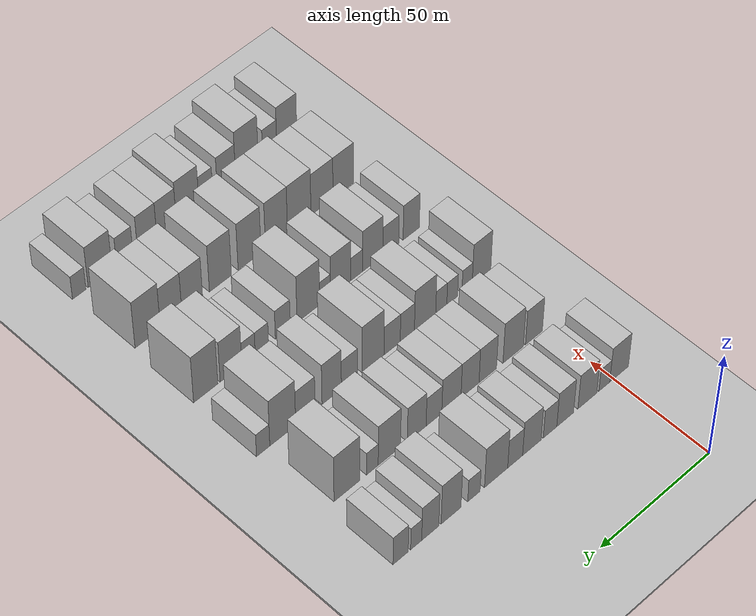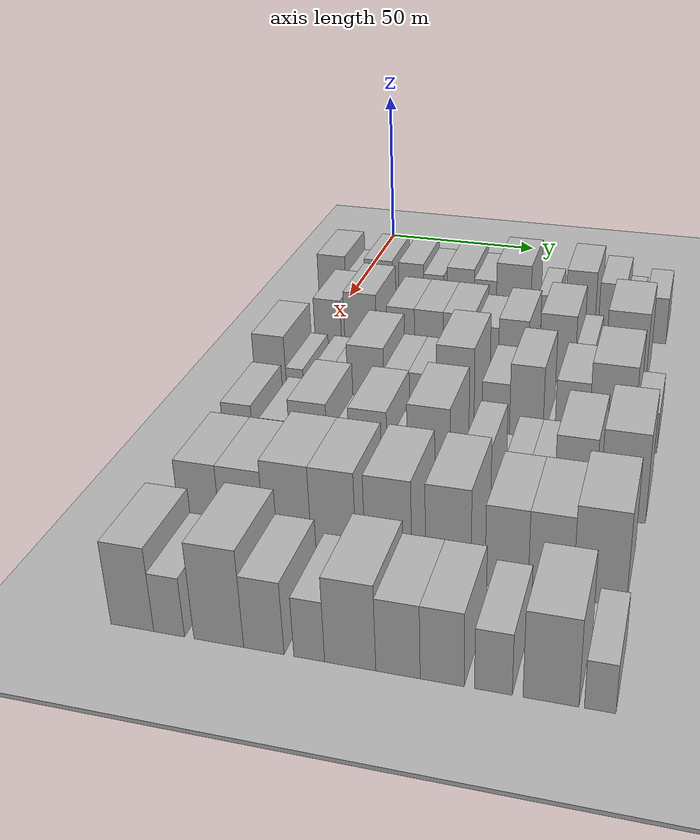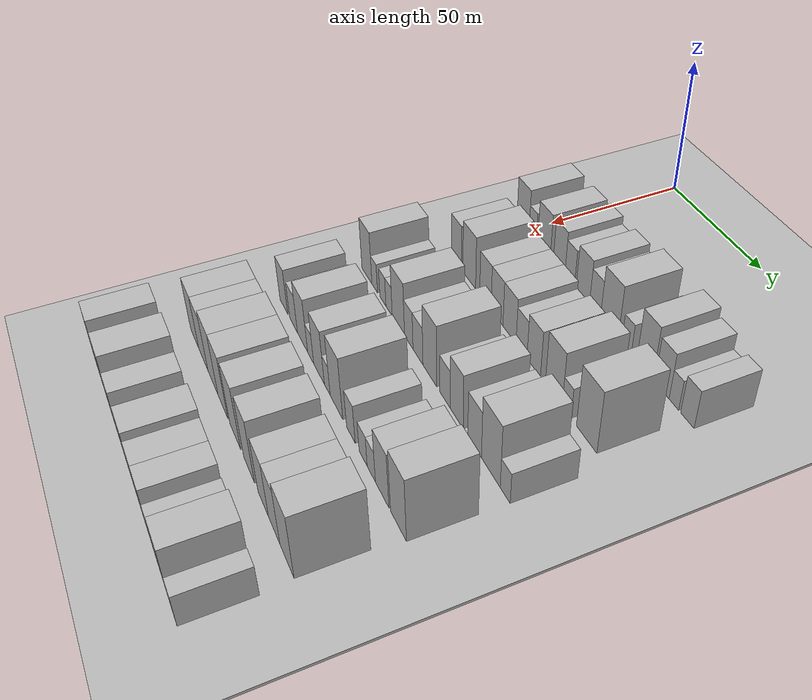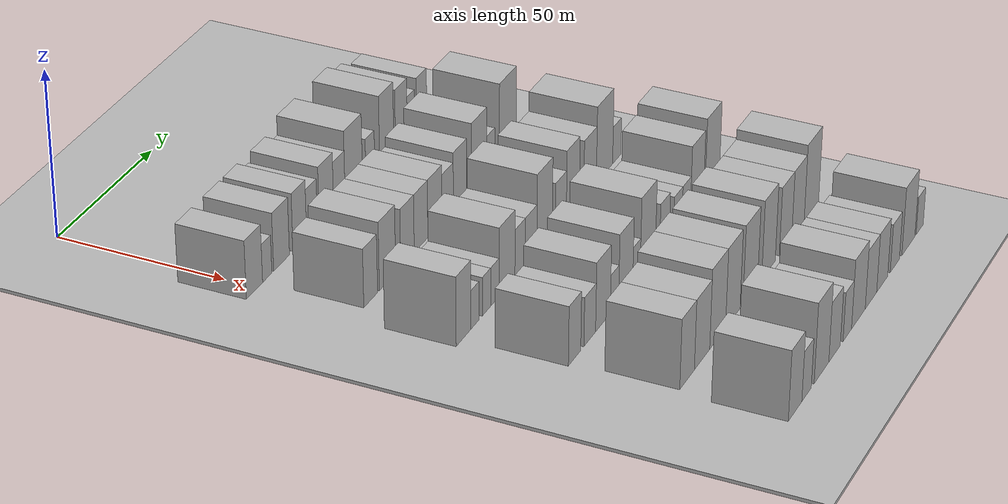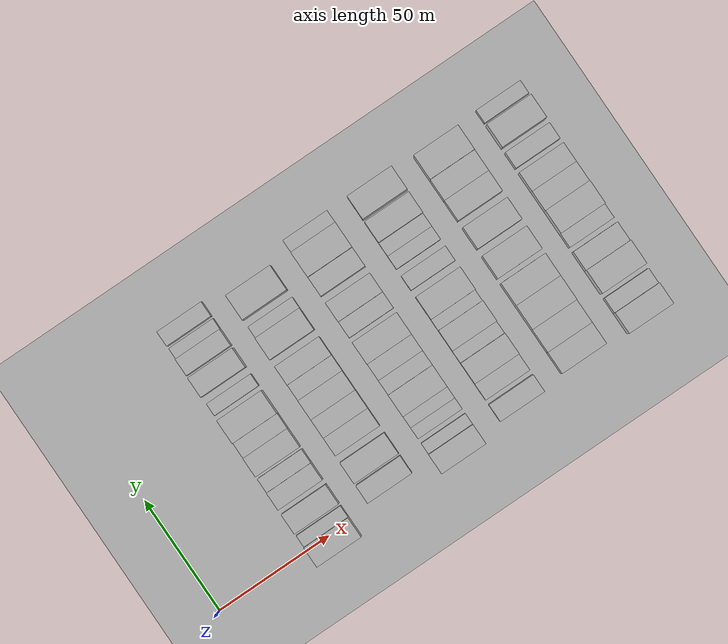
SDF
<sdf version="1.6">
 <world name="default">
  <include><name>ground_plane_1</name><uri>model://HANNAS_ground_plane</uri></include>
  <include>
   <name>ground_plane_2</name>
   <uri>model://HANNAS_ground_plane</uri>
   <pose>100 0 0  0 0 0</pose>
  </include>
  <model name="building_57">
   <static>1</static>
   <pose>50.0000 -2.3324 0 0.000000 0.000000 0.000000</pose>
   <link name="link">
    <pose>0 0 9.00 0 0 0</pose>
    <collision name="collision"><geometry><box><size>20.0000 8.7923 18.0000</size></box></geometry></collision>
    <visual name="visual">
     <cast_shadows>0</cast_shadows>
     <geometry><box><size>20.0000 8.7923 18.0000</size></box></geometry>
     <material>
      <script>
       <uri>model://HANNAS_wall/materials/scripts</uri>
       <uri>model://HANNAS_wall/materials/textures</uri>
       <name>vrc/HANNAS_wall</name>
      </script>
     </material>
    </visual>
   </link>
  </model>
  <model name="building_58">
   <static>1</static>
   <pose>50.0000 4.6097 0 0.000000 0.000000 0.000000</pose>
   <link name="link">
    <pose>0 0 6.00 0 0 0</pose>
    <collision name="collision"><geometry><box><size>20.0000 5.0919 12.0000</size></box></geometry></collision>
    <visual name="visual">
     <cast_shadows>0</cast_shadows>
     <geometry><box><size>20.0000 5.0919 12.0000</size></box></geometry>
     <material>
      <script>
       <uri>model://HANNAS_wall/materials/scripts</uri>
       <uri>model://HANNAS_wall/materials/textures</uri>
       <name>vrc/HANNAS_wall</name>
      </script>
     </material>
    </visual>
   </link>
  </model>
  <model name="building_59">
   <static>1</static>
   <pose>50.0000 12.5494 0 0.000000 0.000000 0.000000</pose>
   <link name="link">
    <pose>0 0 9.00 0 0 0</pose>
    <collision name="collision"><geometry><box><size>20.0000 8.7876 18.0000</size></box></geometry></collision>
    <visual name="visual">
     <cast_shadows>0</cast_shadows>
     <geometry><box><size>20.0000 8.7876 18.0000</size></box></geometry>
     <material>
      <script>
       <uri>model://HANNAS_wall/materials/scripts</uri>
       <uri>model://HANNAS_wall/materials/textures</uri>
       <name>vrc/HANNAS_wall</name>
      </script>
     </material>
    </visual>
   </link>
  </model>
  <model name="building_60">
   <static>1</static>
   <pose>50.0000 22.8094 0 0.000000 0.000000 0.000000</pose>
   <link name="link">
    <pose>0 0 9.00 0 0 0</pose>
    <collision name="collision"><geometry><box><size>20.0000 7.7324 18.0000</size></box></geometry></collision>
    <visual name="visual">
     <cast_shadows>0</cast_shadows>
     <geometry><box><size>20.0000 7.7324 18.0000</size></box></geometry>
     <material>
      <script>
       <uri>model://HANNAS_wall/materials/scripts</uri>
       <uri>model://HANNAS_wall/materials/textures</uri>
       <name>vrc/HANNAS_wall</name>
      </script>
     </material>
    </visual>
   </link>
  </model>
  <model name="building_61">
   <static>1</static>
   <pose>50.0000 29.7895 0 0.000000 0.000000 0.000000</pose>
   <link name="link">
    <pose>0 0 7.50 0 0 0</pose>
    <collision name="collision"><geometry><box><size>20.0000 6.2279 15.0000</size></box></geometry></collision>
    <visual name="visual">
     <cast_shadows>0</cast_shadows>
     <geometry><box><size>20.0000 6.2279 15.0000</size></box></geometry>
     <material>
      <script>
       <uri>model://HANNAS_wall/materials/scripts</uri>
       <uri>model://HANNAS_wall/materials/textures</uri>
       <name>vrc/HANNAS_wall</name>
      </script>
     </material>
    </visual>
   </link>
  </model>
  <model name="building_62">
   <static>1</static>
   <pose>50.0000 38.0964 0 0.000000 0.000000 0.000000</pose>
   <link name="link">
    <pose>0 0 9.00 0 0 0</pose>
    <collision name="collision"><geometry><box><size>20.0000 8.3859 18.0000</size></box></geometry></collision>
    <visual name="visual">
     <cast_shadows>0</cast_shadows>
     <geometry><box><size>20.0000 8.3859 18.0000</size></box></geometry>
     <material>
      <script>
       <uri>model://HANNAS_wall/materials/scripts</uri>
       <uri>model://HANNAS_wall/materials/textures</uri>
       <name>vrc/HANNAS_wall</name>
      </script>
     </material>
    </visual>
   </link>
  </model>
  <model name="building_63">
   <static>1</static>
   <pose>50.0000 45.6493 0 0.000000 0.000000 0.000000</pose>
   <link name="link">
    <pose>0 0 7.50 0 0 0</pose>
    <collision name="collision"><geometry><box><size>20.0000 6.7198 15.0000</size></box></geometry></collision>
    <visual name="visual">
     <cast_shadows>0</cast_shadows>
     <geometry><box><size>20.0000 6.7198 15.0000</size></box></geometry>
     <material>
      <script>
       <uri>model://HANNAS_wall/materials/scripts</uri>
       <uri>model://HANNAS_wall/materials/textures</uri>
       <name>vrc/HANNAS_wall</name>
      </script>
     </material>
    </visual>
   </link>
  </model>
  <model name="building_64">
   <static>1</static>
   <pose>50.0000 54.2087 0 0.000000 0.000000 0.000000</pose>
   <link name="link">
    <pose>0 0 10.50 0 0 0</pose>
    <collision name="collision"><geometry><box><size>20.0000 10.3990 21.0000</size></box></geometry></collision>
    <visual name="visual">
     <cast_shadows>0</cast_shadows>
     <geometry><box><size>20.0000 10.3990 21.0000</size></box></geometry>
     <material>
      <script>
       <uri>model://HANNAS_wall/materials/scripts</uri>
       <uri>model://HANNAS_wall/materials/textures</uri>
       <name>vrc/HANNAS_wall</name>
      </script>
     </material>
    </visual>
   </link>
  </model>
  <model name="building_65">
   <static>1</static>
   <pose>50.0000 64.1168 0 0.000000 0.000000 0.000000</pose>
   <link name="link">
    <pose>0 0 6.00 0 0 0</pose>
    <collision name="collision"><geometry><box><size>20.0000 5.4173 12.0000</size></box></geometry></collision>
    <visual name="visual">
     <cast_shadows>0</cast_shadows>
     <geometry><box><size>20.0000 5.4173 12.0000</size></box></geometry>
     <material>
      <script>
       <uri>model://HANNAS_wall/materials/scripts</uri>
       <uri>model://HANNAS_wall/materials/textures</uri>
       <name>vrc/HANNAS_wall</name>
      </script>
     </material>
    </visual>
   </link>
  </model>
  <model name="building_66">
   <static>1</static>
   <pose>50.0000 74.2066 0 0.000000 0.000000 0.000000</pose>
   <link name="link">
    <pose>0 0 10.50 0 0 0</pose>
    <collision name="collision"><geometry><box><size>20.0000 8.7624 21.0000</size></box></geometry></collision>
    <visual name="visual">
     <cast_shadows>0</cast_shadows>
     <geometry><box><size>20.0000 8.7624 21.0000</size></box></geometry>
     <material>
      <script>
       <uri>model://HANNAS_wall/materials/scripts</uri>
       <uri>model://HANNAS_wall/materials/textures</uri>
       <name>vrc/HANNAS_wall</name>
      </script>
     </material>
    </visual>
   </link>
  </model>
  <model name="building_67">
   <static>1</static>
   <pose>50.0000 83.3027 0 0.000000 0.000000 0.000000</pose>
   <link name="link">
    <pose>0 0 9.00 0 0 0</pose>
    <collision name="collision"><geometry><box><size>20.0000 7.4297 18.0000</size></box></geometry></collision>
    <visual name="visual">
     <cast_shadows>0</cast_shadows>
     <geometry><box><size>20.0000 7.4297 18.0000</size></box></geometry>
     <material>
      <script>
       <uri>model://HANNAS_wall/materials/scripts</uri>
       <uri>model://HANNAS_wall/materials/textures</uri>
       <name>vrc/HANNAS_wall</name>
      </script>
     </material>
    </visual>
   </link>
  </model>
  <model name="building_68">
   <static>1</static>
   <pose>50.0000 89.4338 0 0.000000 0.000000 0.000000</pose>
   <link name="link">
    <pose>0 0 6.00 0 0 0</pose>
    <collision name="collision"><geometry><box><size>20.0000 4.8327 12.0000</size></box></geometry></collision>
    <visual name="visual">
     <cast_shadows>0</cast_shadows>
     <geometry><box><size>20.0000 4.8327 12.0000</size></box></geometry>
     <material>
      <script>
       <uri>model://HANNAS_wall/materials/scripts</uri>
       <uri>model://HANNAS_wall/materials/textures</uri>
       <name>vrc/HANNAS_wall</name>
      </script>
     </material>
    </visual>
   </link>
  </model>
  <model name="building_69">
   <static>1</static>
   <pose>50.0000 96.1300 0 0.000000 0.000000 0.000000</pose>
   <link name="link">
    <pose>0 0 7.50 0 0 0</pose>
    <collision name="collision"><geometry><box><size>20.0000 6.5597 15.0000</size></box></geometry></collision>
    <visual name="visual">
     <cast_shadows>0</cast_shadows>
     <geometry><box><size>20.0000 6.5597 15.0000</size></box></geometry>
     <material>
      <script>
       <uri>model://HANNAS_wall/materials/scripts</uri>
       <uri>model://HANNAS_wall/materials/textures</uri>
       <name>vrc/HANNAS_wall</name>
      </script>
     </material>
    </visual>
   </link>
  </model>
  <model name="building_176">
   <static>1</static>
   <pose>79.0000 6.2187 0 0.000000 0.000000 0.000000</pose>
   <link name="link">
    <pose>0 0 9.00 0 0 0</pose>
    <collision name="collision"><geometry><box><size>20.0000 7.8987 18.0000</size></box></geometry></collision>
    <visual name="visual">
     <cast_shadows>0</cast_shadows>
     <geometry><box><size>20.0000 7.8987 18.0000</size></box></geometry>
     <material>
      <script>
       <uri>model://HANNAS_wall/materials/scripts</uri>
       <uri>model://HANNAS_wall/materials/textures</uri>
       <name>vrc/HANNAS_wall</name>
      </script>
     </material>
    </visual>
   </link>
  </model>
  <model name="building_177">
   <static>1</static>
   <pose>79.0000 15.8964 0 0.000000 0.000000 0.000000</pose>
   <link name="link">
    <pose>0 0 10.50 0 0 0</pose>
    <collision name="collision"><geometry><box><size>20.0000 9.4567 21.0000</size></box></geometry></collision>
    <visual name="visual">
     <cast_shadows>0</cast_shadows>
     <geometry><box><size>20.0000 9.4567 21.0000</size></box></geometry>
     <material>
      <script>
       <uri>model://HANNAS_wall/materials/scripts</uri>
       <uri>model://HANNAS_wall/materials/textures</uri>
       <name>vrc/HANNAS_wall</name>
      </script>
     </material>
    </visual>
   </link>
  </model>
  <model name="building_178">
   <static>1</static>
   <pose>79.0000 27.6338 0 0.000000 0.000000 0.000000</pose>
   <link name="link">
    <pose>0 0 9.00 0 0 0</pose>
    <collision name="collision"><geometry><box><size>20.0000 8.0180 18.0000</size></box></geometry></collision>
    <visual name="visual">
     <cast_shadows>0</cast_shadows>
     <geometry><box><size>20.0000 8.0180 18.0000</size></box></geometry>
     <material>
      <script>
       <uri>model://HANNAS_wall/materials/scripts</uri>
       <uri>model://HANNAS_wall/materials/textures</uri>
       <name>vrc/HANNAS_wall</name>
      </script>
     </material>
    </visual>
   </link>
  </model>
  <model name="building_179">
   <static>1</static>
   <pose>79.0000 35.7452 0 0.000000 0.000000 0.000000</pose>
   <link name="link">
    <pose>0 0 9.00 0 0 0</pose>
    <collision name="collision"><geometry><box><size>20.0000 8.2048 18.0000</size></box></geometry></collision>
    <visual name="visual">
     <cast_shadows>0</cast_shadows>
     <geometry><box><size>20.0000 8.2048 18.0000</size></box></geometry>
     <material>
      <script>
       <uri>model://HANNAS_wall/materials/scripts</uri>
       <uri>model://HANNAS_wall/materials/textures</uri>
       <name>vrc/HANNAS_wall</name>
      </script>
     </material>
    </visual>
   </link>
  </model>
  <model name="building_180">
   <static>1</static>
   <pose>79.0000 44.1849 0 0.000000 0.000000 0.000000</pose>
   <link name="link">
    <pose>0 0 9.00 0 0 0</pose>
    <collision name="collision"><geometry><box><size>20.0000 8.6746 18.0000</size></box></geometry></collision>
    <visual name="visual">
     <cast_shadows>0</cast_shadows>
     <geometry><box><size>20.0000 8.6746 18.0000</size></box></geometry>
     <material>
      <script>
       <uri>model://HANNAS_wall/materials/scripts</uri>
       <uri>model://HANNAS_wall/materials/textures</uri>
       <name>vrc/HANNAS_wall</name>
      </script>
     </material>
    </visual>
   </link>
  </model>
  <model name="building_181">
   <static>1</static>
   <pose>79.0000 52.0331 0 0.000000 0.000000 0.000000</pose>
   <link name="link">
    <pose>0 0 7.50 0 0 0</pose>
    <collision name="collision"><geometry><box><size>20.0000 7.0218 15.0000</size></box></geometry></collision>
    <visual name="visual">
     <cast_shadows>0</cast_shadows>
     <geometry><box><size>20.0000 7.0218 15.0000</size></box></geometry>
     <material>
      <script>
       <uri>model://HANNAS_wall/materials/scripts</uri>
       <uri>model://HANNAS_wall/materials/textures</uri>
       <name>vrc/HANNAS_wall</name>
      </script>
     </material>
    </visual>
   </link>
  </model>
  <model name="building_182">
   <static>1</static>
   <pose>79.0000 59.7293 0 0.000000 0.000000 0.000000</pose>
   <link name="link">
    <pose>0 0 9.00 0 0 0</pose>
    <collision name="collision"><geometry><box><size>20.0000 8.3705 18.0000</size></box></geometry></collision>
    <visual name="visual">
     <cast_shadows>0</cast_shadows>
     <geometry><box><size>20.0000 8.3705 18.0000</size></box></geometry>
     <material>
      <script>
       <uri>model://HANNAS_wall/materials/scripts</uri>
       <uri>model://HANNAS_wall/materials/textures</uri>
       <name>vrc/HANNAS_wall</name>
      </script>
     </material>
    </visual>
   </link>
  </model>
  <model name="building_183">
   <static>1</static>
   <pose>79.0000 71.8369 0 0.000000 0.000000 0.000000</pose>
   <link name="link">
    <pose>0 0 10.50 0 0 0</pose>
    <collision name="collision"><geometry><box><size>20.0000 9.8447 21.0000</size></box></geometry></collision>
    <visual name="visual">
     <cast_shadows>0</cast_shadows>
     <geometry><box><size>20.0000 9.8447 21.0000</size></box></geometry>
     <material>
      <script>
       <uri>model://HANNAS_wall/materials/scripts</uri>
       <uri>model://HANNAS_wall/materials/textures</uri>
       <name>vrc/HANNAS_wall</name>
      </script>
     </material>
    </visual>
   </link>
  </model>
  <model name="building_184">
   <static>1</static>
   <pose>79.0000 79.3097 0 0.000000 0.000000 0.000000</pose>
   <link name="link">
    <pose>0 0 6.00 0 0 0</pose>
    <collision name="collision"><geometry><box><size>20.0000 5.1010 12.0000</size></box></geometry></collision>
    <visual name="visual">
     <cast_shadows>0</cast_shadows>
     <geometry><box><size>20.0000 5.1010 12.0000</size></box></geometry>
     <material>
      <script>
       <uri>model://HANNAS_wall/materials/scripts</uri>
       <uri>model://HANNAS_wall/materials/textures</uri>
       <name>vrc/HANNAS_wall</name>
      </script>
     </material>
    </visual>
   </link>
  </model>
  <model name="building_185">
   <static>1</static>
   <pose>79.0000 90.4090 0 0.000000 0.000000 0.000000</pose>
   <link name="link">
    <pose>0 0 12.00 0 0 0</pose>
    <collision name="collision"><geometry><box><size>20.0000 11.0977 24.0000</size></box></geometry></collision>
    <visual name="visual">
     <cast_shadows>0</cast_shadows>
     <geometry><box><size>20.0000 11.0977 24.0000</size></box></geometry>
     <material>
      <script>
       <uri>model://HANNAS_wall/materials/scripts</uri>
       <uri>model://HANNAS_wall/materials/textures</uri>
       <name>vrc/HANNAS_wall</name>
      </script>
     </material>
    </visual>
   </link>
  </model>
  <model name="building_288">
   <static>1</static>
   <pose>108.0000 0.2488 0 0.000000 0.000000 0.000000</pose>
   <link name="link">
    <pose>0 0 10.50 0 0 0</pose>
    <collision name="collision"><geometry><box><size>20.0000 8.7190 21.0000</size></box></geometry></collision>
    <visual name="visual">
     <cast_shadows>0</cast_shadows>
     <geometry><box><size>20.0000 8.7190 21.0000</size></box></geometry>
     <material>
      <script>
       <uri>model://HANNAS_wall/materials/scripts</uri>
       <uri>model://HANNAS_wall/materials/textures</uri>
       <name>vrc/HANNAS_wall</name>
      </script>
     </material>
    </visual>
   </link>
  </model>
  <model name="building_289">
   <static>1</static>
   <pose>108.0000 7.0121 0 0.000000 0.000000 0.000000</pose>
   <link name="link">
    <pose>0 0 6.00 0 0 0</pose>
    <collision name="collision"><geometry><box><size>20.0000 4.8076 12.0000</size></box></geometry></collision>
    <visual name="visual">
     <cast_shadows>0</cast_shadows>
     <geometry><box><size>20.0000 4.8076 12.0000</size></box></geometry>
     <material>
      <script>
       <uri>model://HANNAS_wall/materials/scripts</uri>
       <uri>model://HANNAS_wall/materials/textures</uri>
       <name>vrc/HANNAS_wall</name>
      </script>
     </material>
    </visual>
   </link>
  </model>
  <model name="building_290">
   <static>1</static>
   <pose>108.0000 13.9181 0 0.000000 0.000000 0.000000</pose>
   <link name="link">
    <pose>0 0 6.00 0 0 0</pose>
    <collision name="collision"><geometry><box><size>20.0000 5.0046 12.0000</size></box></geometry></collision>
    <visual name="visual">
     <cast_shadows>0</cast_shadows>
     <geometry><box><size>20.0000 5.0046 12.0000</size></box></geometry>
     <material>
      <script>
       <uri>model://HANNAS_wall/materials/scripts</uri>
       <uri>model://HANNAS_wall/materials/textures</uri>
       <name>vrc/HANNAS_wall</name>
      </script>
     </material>
    </visual>
   </link>
  </model>
  <model name="building_291">
   <static>1</static>
   <pose>108.0000 18.9950 0 0.000000 0.000000 0.000000</pose>
   <link name="link">
    <pose>0 0 6.00 0 0 0</pose>
    <collision name="collision"><geometry><box><size>20.0000 5.1491 12.0000</size></box></geometry></collision>
    <visual name="visual">
     <cast_shadows>0</cast_shadows>
     <geometry><box><size>20.0000 5.1491 12.0000</size></box></geometry>
     <material>
      <script>
       <uri>model://HANNAS_wall/materials/scripts</uri>
       <uri>model://HANNAS_wall/materials/textures</uri>
       <name>vrc/HANNAS_wall</name>
      </script>
     </material>
    </visual>
   </link>
  </model>
  <model name="building_292">
   <static>1</static>
   <pose>108.0000 26.4523 0 0.000000 0.000000 0.000000</pose>
   <link name="link">
    <pose>0 0 10.50 0 0 0</pose>
    <collision name="collision"><geometry><box><size>20.0000 9.7654 21.0000</size></box></geometry></collision>
    <visual name="visual">
     <cast_shadows>0</cast_shadows>
     <geometry><box><size>20.0000 9.7654 21.0000</size></box></geometry>
     <material>
      <script>
       <uri>model://HANNAS_wall/materials/scripts</uri>
       <uri>model://HANNAS_wall/materials/textures</uri>
       <name>vrc/HANNAS_wall</name>
      </script>
     </material>
    </visual>
   </link>
  </model>
  <model name="building_293">
   <static>1</static>
   <pose>108.0000 34.5701 0 0.000000 0.000000 0.000000</pose>
   <link name="link">
    <pose>0 0 7.50 0 0 0</pose>
    <collision name="collision"><geometry><box><size>20.0000 6.4703 15.0000</size></box></geometry></collision>
    <visual name="visual">
     <cast_shadows>0</cast_shadows>
     <geometry><box><size>20.0000 6.4703 15.0000</size></box></geometry>
     <material>
      <script>
       <uri>model://HANNAS_wall/materials/scripts</uri>
       <uri>model://HANNAS_wall/materials/textures</uri>
       <name>vrc/HANNAS_wall</name>
      </script>
     </material>
    </visual>
   </link>
  </model>
  <model name="building_294">
   <static>1</static>
   <pose>108.0000 41.4968 0 0.000000 0.000000 0.000000</pose>
   <link name="link">
    <pose>0 0 7.50 0 0 0</pose>
    <collision name="collision"><geometry><box><size>20.0000 7.3831 15.0000</size></box></geometry></collision>
    <visual name="visual">
     <cast_shadows>0</cast_shadows>
     <geometry><box><size>20.0000 7.3831 15.0000</size></box></geometry>
     <material>
      <script>
       <uri>model://HANNAS_wall/materials/scripts</uri>
       <uri>model://HANNAS_wall/materials/textures</uri>
       <name>vrc/HANNAS_wall</name>
      </script>
     </material>
    </visual>
   </link>
  </model>
  <model name="building_295">
   <static>1</static>
   <pose>108.0000 50.1180 0 0.000000 0.000000 0.000000</pose>
   <link name="link">
    <pose>0 0 12.00 0 0 0</pose>
    <collision name="collision"><geometry><box><size>20.0000 9.8594 24.0000</size></box></geometry></collision>
    <visual name="visual">
     <cast_shadows>0</cast_shadows>
     <geometry><box><size>20.0000 9.8594 24.0000</size></box></geometry>
     <material>
      <script>
       <uri>model://HANNAS_wall/materials/scripts</uri>
       <uri>model://HANNAS_wall/materials/textures</uri>
       <name>vrc/HANNAS_wall</name>
      </script>
     </material>
    </visual>
   </link>
  </model>
  <model name="building_296">
   <static>1</static>
   <pose>108.0000 60.6441 0 0.000000 0.000000 0.000000</pose>
   <link name="link">
    <pose>0 0 7.50 0 0 0</pose>
    <collision name="collision"><geometry><box><size>20.0000 7.1928 15.0000</size></box></geometry></collision>
    <visual name="visual">
     <cast_shadows>0</cast_shadows>
     <geometry><box><size>20.0000 7.1928 15.0000</size></box></geometry>
     <material>
      <script>
       <uri>model://HANNAS_wall/materials/scripts</uri>
       <uri>model://HANNAS_wall/materials/textures</uri>
       <name>vrc/HANNAS_wall</name>
      </script>
     </material>
    </visual>
   </link>
  </model>
  <model name="building_297">
   <static>1</static>
   <pose>108.0000 68.5240 0 0.000000 0.000000 0.000000</pose>
   <link name="link">
    <pose>0 0 10.50 0 0 0</pose>
    <collision name="collision"><geometry><box><size>20.0000 8.5669 21.0000</size></box></geometry></collision>
    <visual name="visual">
     <cast_shadows>0</cast_shadows>
     <geometry><box><size>20.0000 8.5669 21.0000</size></box></geometry>
     <material>
      <script>
       <uri>model://HANNAS_wall/materials/scripts</uri>
       <uri>model://HANNAS_wall/materials/textures</uri>
       <name>vrc/HANNAS_wall</name>
      </script>
     </material>
    </visual>
   </link>
  </model>
  <model name="building_298">
   <static>1</static>
   <pose>108.0000 80.0629 0 0.000000 0.000000 0.000000</pose>
   <link name="link">
    <pose>0 0 9.00 0 0 0</pose>
    <collision name="collision"><geometry><box><size>20.0000 8.5109 18.0000</size></box></geometry></collision>
    <visual name="visual">
     <cast_shadows>0</cast_shadows>
     <geometry><box><size>20.0000 8.5109 18.0000</size></box></geometry>
     <material>
      <script>
       <uri>model://HANNAS_wall/materials/scripts</uri>
       <uri>model://HANNAS_wall/materials/textures</uri>
       <name>vrc/HANNAS_wall</name>
      </script>
     </material>
    </visual>
   </link>
  </model>
  <model name="building_299">
   <static>1</static>
   <pose>108.0000 89.9229 0 0.000000 0.000000 0.000000</pose>
   <link name="link">
    <pose>0 0 12.00 0 0 0</pose>
    <collision name="collision"><geometry><box><size>20.0000 11.2092 24.0000</size></box></geometry></collision>
    <visual name="visual">
     <cast_shadows>0</cast_shadows>
     <geometry><box><size>20.0000 11.2092 24.0000</size></box></geometry>
     <material>
      <script>
       <uri>model://HANNAS_wall/materials/scripts</uri>
       <uri>model://HANNAS_wall/materials/textures</uri>
       <name>vrc/HANNAS_wall</name>
      </script>
     </material>
    </visual>
   </link>
  </model>
  <model name="building_300">
   <static>1</static>
   <pose>108.0000 98.3890 0 0.000000 0.000000 0.000000</pose>
   <link name="link">
    <pose>0 0 6.00 0 0 0</pose>
    <collision name="collision"><geometry><box><size>20.0000 5.7230 12.0000</size></box></geometry></collision>
    <visual name="visual">
     <cast_shadows>0</cast_shadows>
     <geometry><box><size>20.0000 5.7230 12.0000</size></box></geometry>
     <material>
      <script>
       <uri>model://HANNAS_wall/materials/scripts</uri>
       <uri>model://HANNAS_wall/materials/textures</uri>
       <name>vrc/HANNAS_wall</name>
      </script>
     </material>
    </visual>
   </link>
  </model>
  <model name="building_407">
   <static>1</static>
   <pose>137.0000 3.4073 0 0.000000 0.000000 0.000000</pose>
   <link name="link">
    <pose>0 0 9.00 0 0 0</pose>
    <collision name="collision"><geometry><box><size>20.0000 7.6424 18.0000</size></box></geometry></collision>
    <visual name="visual">
     <cast_shadows>0</cast_shadows>
     <geometry><box><size>20.0000 7.6424 18.0000</size></box></geometry>
     <material>
      <script>
       <uri>model://HANNAS_wall/materials/scripts</uri>
       <uri>model://HANNAS_wall/materials/textures</uri>
       <name>vrc/HANNAS_wall</name>
      </script>
     </material>
    </visual>
   </link>
  </model>
  <model name="building_408">
   <static>1</static>
   <pose>137.0000 12.9053 0 0.000000 0.000000 0.000000</pose>
   <link name="link">
    <pose>0 0 7.50 0 0 0</pose>
    <collision name="collision"><geometry><box><size>20.0000 7.3535 15.0000</size></box></geometry></collision>
    <visual name="visual">
     <cast_shadows>0</cast_shadows>
     <geometry><box><size>20.0000 7.3535 15.0000</size></box></geometry>
     <material>
      <script>
       <uri>model://HANNAS_wall/materials/scripts</uri>
       <uri>model://HANNAS_wall/materials/textures</uri>
       <name>vrc/HANNAS_wall</name>
      </script>
     </material>
    </visual>
   </link>
  </model>
  <model name="building_409">
   <static>1</static>
   <pose>137.0000 21.2712 0 0.000000 0.000000 0.000000</pose>
   <link name="link">
    <pose>0 0 10.50 0 0 0</pose>
    <collision name="collision"><geometry><box><size>20.0000 9.3783 21.0000</size></box></geometry></collision>
    <visual name="visual">
     <cast_shadows>0</cast_shadows>
     <geometry><box><size>20.0000 9.3783 21.0000</size></box></geometry>
     <material>
      <script>
       <uri>model://HANNAS_wall/materials/scripts</uri>
       <uri>model://HANNAS_wall/materials/textures</uri>
       <name>vrc/HANNAS_wall</name>
      </script>
     </material>
    </visual>
   </link>
  </model>
  <model name="building_410">
   <static>1</static>
   <pose>137.0000 28.6631 0 0.000000 0.000000 0.000000</pose>
   <link name="link">
    <pose>0 0 6.00 0 0 0</pose>
    <collision name="collision"><geometry><box><size>20.0000 5.4054 12.0000</size></box></geometry></collision>
    <visual name="visual">
     <cast_shadows>0</cast_shadows>
     <geometry><box><size>20.0000 5.4054 12.0000</size></box></geometry>
     <material>
      <script>
       <uri>model://HANNAS_wall/materials/scripts</uri>
       <uri>model://HANNAS_wall/materials/textures</uri>
       <name>vrc/HANNAS_wall</name>
      </script>
     </material>
    </visual>
   </link>
  </model>
  <model name="building_411">
   <static>1</static>
   <pose>137.0000 35.9965 0 0.000000 0.000000 0.000000</pose>
   <link name="link">
    <pose>0 0 10.50 0 0 0</pose>
    <collision name="collision"><geometry><box><size>20.0000 9.2613 21.0000</size></box></geometry></collision>
    <visual name="visual">
     <cast_shadows>0</cast_shadows>
     <geometry><box><size>20.0000 9.2613 21.0000</size></box></geometry>
     <material>
      <script>
       <uri>model://HANNAS_wall/materials/scripts</uri>
       <uri>model://HANNAS_wall/materials/textures</uri>
       <name>vrc/HANNAS_wall</name>
      </script>
     </material>
    </visual>
   </link>
  </model>
  <model name="building_412">
   <static>1</static>
   <pose>137.0000 43.0780 0 0.000000 0.000000 0.000000</pose>
   <link name="link">
    <pose>0 0 6.00 0 0 0</pose>
    <collision name="collision"><geometry><box><size>20.0000 4.9017 12.0000</size></box></geometry></collision>
    <visual name="visual">
     <cast_shadows>0</cast_shadows>
     <geometry><box><size>20.0000 4.9017 12.0000</size></box></geometry>
     <material>
      <script>
       <uri>model://HANNAS_wall/materials/scripts</uri>
       <uri>model://HANNAS_wall/materials/textures</uri>
       <name>vrc/HANNAS_wall</name>
      </script>
     </material>
    </visual>
   </link>
  </model>
  <model name="building_413">
   <static>1</static>
   <pose>137.0000 50.6261 0 0.000000 0.000000 0.000000</pose>
   <link name="link">
    <pose>0 0 12.00 0 0 0</pose>
    <collision name="collision"><geometry><box><size>20.0000 10.1945 24.0000</size></box></geometry></collision>
    <visual name="visual">
     <cast_shadows>0</cast_shadows>
     <geometry><box><size>20.0000 10.1945 24.0000</size></box></geometry>
     <material>
      <script>
       <uri>model://HANNAS_wall/materials/scripts</uri>
       <uri>model://HANNAS_wall/materials/textures</uri>
       <name>vrc/HANNAS_wall</name>
      </script>
     </material>
    </visual>
   </link>
  </model>
  <model name="building_414">
   <static>1</static>
   <pose>137.0000 62.0329 0 0.000000 0.000000 0.000000</pose>
   <link name="link">
    <pose>0 0 7.50 0 0 0</pose>
    <collision name="collision"><geometry><box><size>20.0000 6.6192 15.0000</size></box></geometry></collision>
    <visual name="visual">
     <cast_shadows>0</cast_shadows>
     <geometry><box><size>20.0000 6.6192 15.0000</size></box></geometry>
     <material>
      <script>
       <uri>model://HANNAS_wall/materials/scripts</uri>
       <uri>model://HANNAS_wall/materials/textures</uri>
       <name>vrc/HANNAS_wall</name>
      </script>
     </material>
    </visual>
   </link>
  </model>
  <model name="building_415">
   <static>1</static>
   <pose>137.0000 71.2948 0 0.000000 0.000000 0.000000</pose>
   <link name="link">
    <pose>0 0 6.00 0 0 0</pose>
    <collision name="collision"><geometry><box><size>20.0000 5.9046 12.0000</size></box></geometry></collision>
    <visual name="visual">
     <cast_shadows>0</cast_shadows>
     <geometry><box><size>20.0000 5.9046 12.0000</size></box></geometry>
     <material>
      <script>
       <uri>model://HANNAS_wall/materials/scripts</uri>
       <uri>model://HANNAS_wall/materials/textures</uri>
       <name>vrc/HANNAS_wall</name>
      </script>
     </material>
    </visual>
   </link>
  </model>
  <model name="building_416">
   <static>1</static>
   <pose>137.0000 77.2018 0 0.000000 0.000000 0.000000</pose>
   <link name="link">
    <pose>0 0 6.00 0 0 0</pose>
    <collision name="collision"><geometry><box><size>20.0000 5.9094 12.0000</size></box></geometry></collision>
    <visual name="visual">
     <cast_shadows>0</cast_shadows>
     <geometry><box><size>20.0000 5.9094 12.0000</size></box></geometry>
     <material>
      <script>
       <uri>model://HANNAS_wall/materials/scripts</uri>
       <uri>model://HANNAS_wall/materials/textures</uri>
       <name>vrc/HANNAS_wall</name>
      </script>
     </material>
    </visual>
   </link>
  </model>
  <model name="building_417">
   <static>1</static>
   <pose>137.0000 84.8633 0 0.000000 0.000000 0.000000</pose>
   <link name="link">
    <pose>0 0 10.50 0 0 0</pose>
    <collision name="collision"><geometry><box><size>20.0000 9.4136 21.0000</size></box></geometry></collision>
    <visual name="visual">
     <cast_shadows>0</cast_shadows>
     <geometry><box><size>20.0000 9.4136 21.0000</size></box></geometry>
     <material>
      <script>
       <uri>model://HANNAS_wall/materials/scripts</uri>
       <uri>model://HANNAS_wall/materials/textures</uri>
       <name>vrc/HANNAS_wall</name>
      </script>
     </material>
    </visual>
   </link>
  </model>
  <model name="building_418">
   <static>1</static>
   <pose>137.0000 95.8011 0 0.000000 0.000000 0.000000</pose>
   <link name="link">
    <pose>0 0 12.00 0 0 0</pose>
    <collision name="collision"><geometry><box><size>20.0000 10.4619 24.0000</size></box></geometry></collision>
    <visual name="visual">
     <cast_shadows>0</cast_shadows>
     <geometry><box><size>20.0000 10.4619 24.0000</size></box></geometry>
     <material>
      <script>
       <uri>model://HANNAS_wall/materials/scripts</uri>
       <uri>model://HANNAS_wall/materials/textures</uri>
       <name>vrc/HANNAS_wall</name>
      </script>
     </material>
    </visual>
   </link>
  </model>
  <model name="building_514">
   <static>1</static>
   <pose>166.0000 6.2524 0 0.000000 0.000000 0.000000</pose>
   <link name="link">
    <pose>0 0 10.50 0 0 0</pose>
    <collision name="collision"><geometry><box><size>20.0000 9.5659 21.0000</size></box></geometry></collision>
    <visual name="visual">
     <cast_shadows>0</cast_shadows>
     <geometry><box><size>20.0000 9.5659 21.0000</size></box></geometry>
     <material>
      <script>
       <uri>model://HANNAS_wall/materials/scripts</uri>
       <uri>model://HANNAS_wall/materials/textures</uri>
       <name>vrc/HANNAS_wall</name>
      </script>
     </material>
    </visual>
   </link>
  </model>
  <model name="building_515">
   <static>1</static>
   <pose>166.0000 16.1452 0 0.000000 0.000000 0.000000</pose>
   <link name="link">
    <pose>0 0 10.50 0 0 0</pose>
    <collision name="collision"><geometry><box><size>20.0000 10.2198 21.0000</size></box></geometry></collision>
    <visual name="visual">
     <cast_shadows>0</cast_shadows>
     <geometry><box><size>20.0000 10.2198 21.0000</size></box></geometry>
     <material>
      <script>
       <uri>model://HANNAS_wall/materials/scripts</uri>
       <uri>model://HANNAS_wall/materials/textures</uri>
       <name>vrc/HANNAS_wall</name>
      </script>
     </material>
    </visual>
   </link>
  </model>
  <model name="building_516">
   <static>1</static>
   <pose>166.0000 26.6410 0 0.000000 0.000000 0.000000</pose>
   <link name="link">
    <pose>0 0 12.00 0 0 0</pose>
    <collision name="collision"><geometry><box><size>20.0000 10.7718 24.0000</size></box></geometry></collision>
    <visual name="visual">
     <cast_shadows>0</cast_shadows>
     <geometry><box><size>20.0000 10.7718 24.0000</size></box></geometry>
     <material>
      <script>
       <uri>model://HANNAS_wall/materials/scripts</uri>
       <uri>model://HANNAS_wall/materials/textures</uri>
       <name>vrc/HANNAS_wall</name>
      </script>
     </material>
    </visual>
   </link>
  </model>
  <model name="building_517">
   <static>1</static>
   <pose>166.0000 37.0511 0 0.000000 0.000000 0.000000</pose>
   <link name="link">
    <pose>0 0 12.00 0 0 0</pose>
    <collision name="collision"><geometry><box><size>20.0000 10.0484 24.0000</size></box></geometry></collision>
    <visual name="visual">
     <cast_shadows>0</cast_shadows>
     <geometry><box><size>20.0000 10.0484 24.0000</size></box></geometry>
     <material>
      <script>
       <uri>model://HANNAS_wall/materials/scripts</uri>
       <uri>model://HANNAS_wall/materials/textures</uri>
       <name>vrc/HANNAS_wall</name>
      </script>
     </material>
    </visual>
   </link>
  </model>
  <model name="building_518">
   <static>1</static>
   <pose>166.0000 49.2371 0 0.000000 0.000000 0.000000</pose>
   <link name="link">
    <pose>0 0 12.00 0 0 0</pose>
    <collision name="collision"><geometry><box><size>20.0000 10.3235 24.0000</size></box></geometry></collision>
    <visual name="visual">
     <cast_shadows>0</cast_shadows>
     <geometry><box><size>20.0000 10.3235 24.0000</size></box></geometry>
     <material>
      <script>
       <uri>model://HANNAS_wall/materials/scripts</uri>
       <uri>model://HANNAS_wall/materials/textures</uri>
       <name>vrc/HANNAS_wall</name>
      </script>
     </material>
    </visual>
   </link>
  </model>
  <model name="building_519">
   <static>1</static>
   <pose>166.0000 62.2968 0 0.000000 0.000000 0.000000</pose>
   <link name="link">
    <pose>0 0 12.00 0 0 0</pose>
    <collision name="collision"><geometry><box><size>20.0000 9.7959 24.0000</size></box></geometry></collision>
    <visual name="visual">
     <cast_shadows>0</cast_shadows>
     <geometry><box><size>20.0000 9.7959 24.0000</size></box></geometry>
     <material>
      <script>
       <uri>model://HANNAS_wall/materials/scripts</uri>
       <uri>model://HANNAS_wall/materials/textures</uri>
       <name>vrc/HANNAS_wall</name>
      </script>
     </material>
    </visual>
   </link>
  </model>
  <model name="building_520">
   <static>1</static>
   <pose>166.0000 74.7565 0 0.000000 0.000000 0.000000</pose>
   <link name="link">
    <pose>0 0 10.50 0 0 0</pose>
    <collision name="collision"><geometry><box><size>20.0000 9.1235 21.0000</size></box></geometry></collision>
    <visual name="visual">
     <cast_shadows>0</cast_shadows>
     <geometry><box><size>20.0000 9.1235 21.0000</size></box></geometry>
     <material>
      <script>
       <uri>model://HANNAS_wall/materials/scripts</uri>
       <uri>model://HANNAS_wall/materials/textures</uri>
       <name>vrc/HANNAS_wall</name>
      </script>
     </material>
    </visual>
   </link>
  </model>
  <model name="building_521">
   <static>1</static>
   <pose>166.0000 83.9920 0 0.000000 0.000000 0.000000</pose>
   <link name="link">
    <pose>0 0 10.50 0 0 0</pose>
    <collision name="collision"><geometry><box><size>20.0000 9.3475 21.0000</size></box></geometry></collision>
    <visual name="visual">
     <cast_shadows>0</cast_shadows>
     <geometry><box><size>20.0000 9.3475 21.0000</size></box></geometry>
     <material>
      <script>
       <uri>model://HANNAS_wall/materials/scripts</uri>
       <uri>model://HANNAS_wall/materials/textures</uri>
       <name>vrc/HANNAS_wall</name>
      </script>
     </material>
    </visual>
   </link>
  </model>
  <model name="building_522">
   <static>1</static>
   <pose>166.0000 94.1625 0 0.000000 0.000000 0.000000</pose>
   <link name="link">
    <pose>0 0 12.00 0 0 0</pose>
    <collision name="collision"><geometry><box><size>20.0000 10.9936 24.0000</size></box></geometry></collision>
    <visual name="visual">
     <cast_shadows>0</cast_shadows>
     <geometry><box><size>20.0000 10.9936 24.0000</size></box></geometry>
     <material>
      <script>
       <uri>model://HANNAS_wall/materials/scripts</uri>
       <uri>model://HANNAS_wall/materials/textures</uri>
       <name>vrc/HANNAS_wall</name>
      </script>
     </material>
    </visual>
   </link>
  </model>
  <model name="building_629">
   <static>1</static>
   <pose>195.0000 4.4336 0 0.000000 0.000000 0.000000</pose>
   <link name="link">
    <pose>0 0 10.50 0 0 0</pose>
    <collision name="collision"><geometry><box><size>20.0000 9.3428 21.0000</size></box></geometry></collision>
    <visual name="visual">
     <cast_shadows>0</cast_shadows>
     <geometry><box><size>20.0000 9.3428 21.0000</size></box></geometry>
     <material>
      <script>
       <uri>model://HANNAS_wall/materials/scripts</uri>
       <uri>model://HANNAS_wall/materials/textures</uri>
       <name>vrc/HANNAS_wall</name>
      </script>
     </material>
    </visual>
   </link>
  </model>
  <model name="building_630">
   <static>1</static>
   <pose>195.0000 12.4103 0 0.000000 0.000000 0.000000</pose>
   <link name="link">
    <pose>0 0 7.50 0 0 0</pose>
    <collision name="collision"><geometry><box><size>20.0000 6.6107 15.0000</size></box></geometry></collision>
    <visual name="visual">
     <cast_shadows>0</cast_shadows>
     <geometry><box><size>20.0000 6.6107 15.0000</size></box></geometry>
     <material>
      <script>
       <uri>model://HANNAS_wall/materials/scripts</uri>
       <uri>model://HANNAS_wall/materials/textures</uri>
       <name>vrc/HANNAS_wall</name>
      </script>
     </material>
    </visual>
   </link>
  </model>
  <model name="building_631">
   <static>1</static>
   <pose>195.0000 22.9566 0 0.000000 0.000000 0.000000</pose>
   <link name="link">
    <pose>0 0 12.00 0 0 0</pose>
    <collision name="collision"><geometry><box><size>20.0000 10.4819 24.0000</size></box></geometry></collision>
    <visual name="visual">
     <cast_shadows>0</cast_shadows>
     <geometry><box><size>20.0000 10.4819 24.0000</size></box></geometry>
     <material>
      <script>
       <uri>model://HANNAS_wall/materials/scripts</uri>
       <uri>model://HANNAS_wall/materials/textures</uri>
       <name>vrc/HANNAS_wall</name>
      </script>
     </material>
    </visual>
   </link>
  </model>
  <model name="building_632">
   <static>1</static>
   <pose>195.0000 32.3825 0 0.000000 0.000000 0.000000</pose>
   <link name="link">
    <pose>0 0 9.00 0 0 0</pose>
    <collision name="collision"><geometry><box><size>20.0000 8.3699 18.0000</size></box></geometry></collision>
    <visual name="visual">
     <cast_shadows>0</cast_shadows>
     <geometry><box><size>20.0000 8.3699 18.0000</size></box></geometry>
     <material>
      <script>
       <uri>model://HANNAS_wall/materials/scripts</uri>
       <uri>model://HANNAS_wall/materials/textures</uri>
       <name>vrc/HANNAS_wall</name>
      </script>
     </material>
    </visual>
   </link>
  </model>
  <model name="building_633">
   <static>1</static>
   <pose>195.0000 41.7045 0 0.000000 0.000000 0.000000</pose>
   <link name="link">
    <pose>0 0 7.50 0 0 0</pose>
    <collision name="collision"><geometry><box><size>20.0000 6.2742 15.0000</size></box></geometry></collision>
    <visual name="visual">
     <cast_shadows>0</cast_shadows>
     <geometry><box><size>20.0000 6.2742 15.0000</size></box></geometry>
     <material>
      <script>
       <uri>model://HANNAS_wall/materials/scripts</uri>
       <uri>model://HANNAS_wall/materials/textures</uri>
       <name>vrc/HANNAS_wall</name>
      </script>
     </material>
    </visual>
   </link>
  </model>
  <model name="building_634">
   <static>1</static>
   <pose>195.0000 49.9725 0 0.000000 0.000000 0.000000</pose>
   <link name="link">
    <pose>0 0 10.50 0 0 0</pose>
    <collision name="collision"><geometry><box><size>20.0000 10.2617 21.0000</size></box></geometry></collision>
    <visual name="visual">
     <cast_shadows>0</cast_shadows>
     <geometry><box><size>20.0000 10.2617 21.0000</size></box></geometry>
     <material>
      <script>
       <uri>model://HANNAS_wall/materials/scripts</uri>
       <uri>model://HANNAS_wall/materials/textures</uri>
       <name>vrc/HANNAS_wall</name>
      </script>
     </material>
    </visual>
   </link>
  </model>
  <model name="building_635">
   <static>1</static>
   <pose>195.0000 59.4667 0 0.000000 0.000000 0.000000</pose>
   <link name="link">
    <pose>0 0 9.00 0 0 0</pose>
    <collision name="collision"><geometry><box><size>20.0000 8.7268 18.0000</size></box></geometry></collision>
    <visual name="visual">
     <cast_shadows>0</cast_shadows>
     <geometry><box><size>20.0000 8.7268 18.0000</size></box></geometry>
     <material>
      <script>
       <uri>model://HANNAS_wall/materials/scripts</uri>
       <uri>model://HANNAS_wall/materials/textures</uri>
       <name>vrc/HANNAS_wall</name>
      </script>
     </material>
    </visual>
   </link>
  </model>
  <model name="building_636">
   <static>1</static>
   <pose>195.0000 68.0865 0 0.000000 0.000000 0.000000</pose>
   <link name="link">
    <pose>0 0 9.00 0 0 0</pose>
    <collision name="collision"><geometry><box><size>20.0000 8.5128 18.0000</size></box></geometry></collision>
    <visual name="visual">
     <cast_shadows>0</cast_shadows>
     <geometry><box><size>20.0000 8.5128 18.0000</size></box></geometry>
     <material>
      <script>
       <uri>model://HANNAS_wall/materials/scripts</uri>
       <uri>model://HANNAS_wall/materials/textures</uri>
       <name>vrc/HANNAS_wall</name>
      </script>
     </material>
    </visual>
   </link>
  </model>
  <model name="building_637">
   <static>1</static>
   <pose>195.0000 77.9311 0 0.000000 0.000000 0.000000</pose>
   <link name="link">
    <pose>0 0 7.50 0 0 0</pose>
    <collision name="collision"><geometry><box><size>20.0000 7.1764 15.0000</size></box></geometry></collision>
    <visual name="visual">
     <cast_shadows>0</cast_shadows>
     <geometry><box><size>20.0000 7.1764 15.0000</size></box></geometry>
     <material>
      <script>
       <uri>model://HANNAS_wall/materials/scripts</uri>
       <uri>model://HANNAS_wall/materials/textures</uri>
       <name>vrc/HANNAS_wall</name>
      </script>
     </material>
    </visual>
   </link>
  </model>
  <model name="building_638">
   <static>1</static>
   <pose>195.0000 88.7223 0 0.000000 0.000000 0.000000</pose>
   <link name="link">
    <pose>0 0 10.50 0 0 0</pose>
    <collision name="collision"><geometry><box><size>20.0000 10.4059 21.0000</size></box></geometry></collision>
    <visual name="visual">
     <cast_shadows>0</cast_shadows>
     <geometry><box><size>20.0000 10.4059 21.0000</size></box></geometry>
     <material>
      <script>
       <uri>model://HANNAS_wall/materials/scripts</uri>
       <uri>model://HANNAS_wall/materials/textures</uri>
       <name>vrc/HANNAS_wall</name>
      </script>
     </material>
    </visual>
   </link>
  </model>
  <model name="building_639">
   <static>1</static>
   <pose>195.0000 97.8203 0 0.000000 0.000000 0.000000</pose>
   <link name="link">
    <pose>0 0 6.00 0 0 0</pose>
    <collision name="collision"><geometry><box><size>20.0000 5.7901 12.0000</size></box></geometry></collision>
    <visual name="visual">
     <cast_shadows>0</cast_shadows>
     <geometry><box><size>20.0000 5.7901 12.0000</size></box></geometry>
     <material>
      <script>
       <uri>model://HANNAS_wall/materials/scripts</uri>
       <uri>model://HANNAS_wall/materials/textures</uri>
       <name>vrc/HANNAS_wall</name>
      </script>
     </material>
    </visual>
   </link>
  </model>
 </world>
</sdf>
